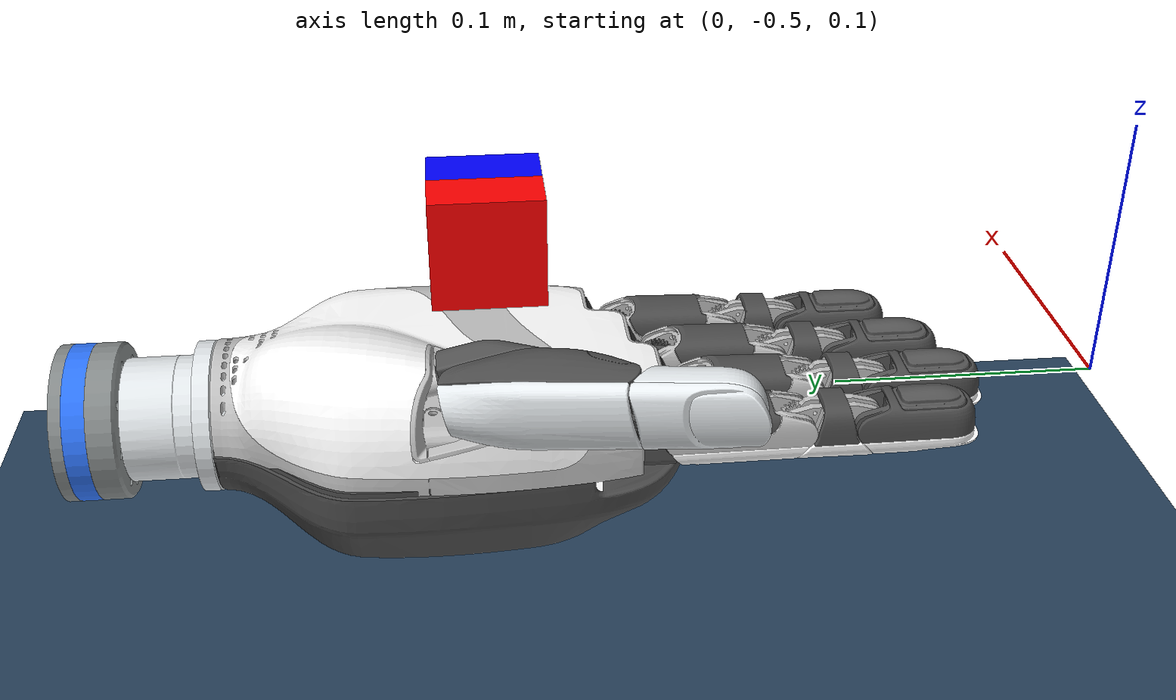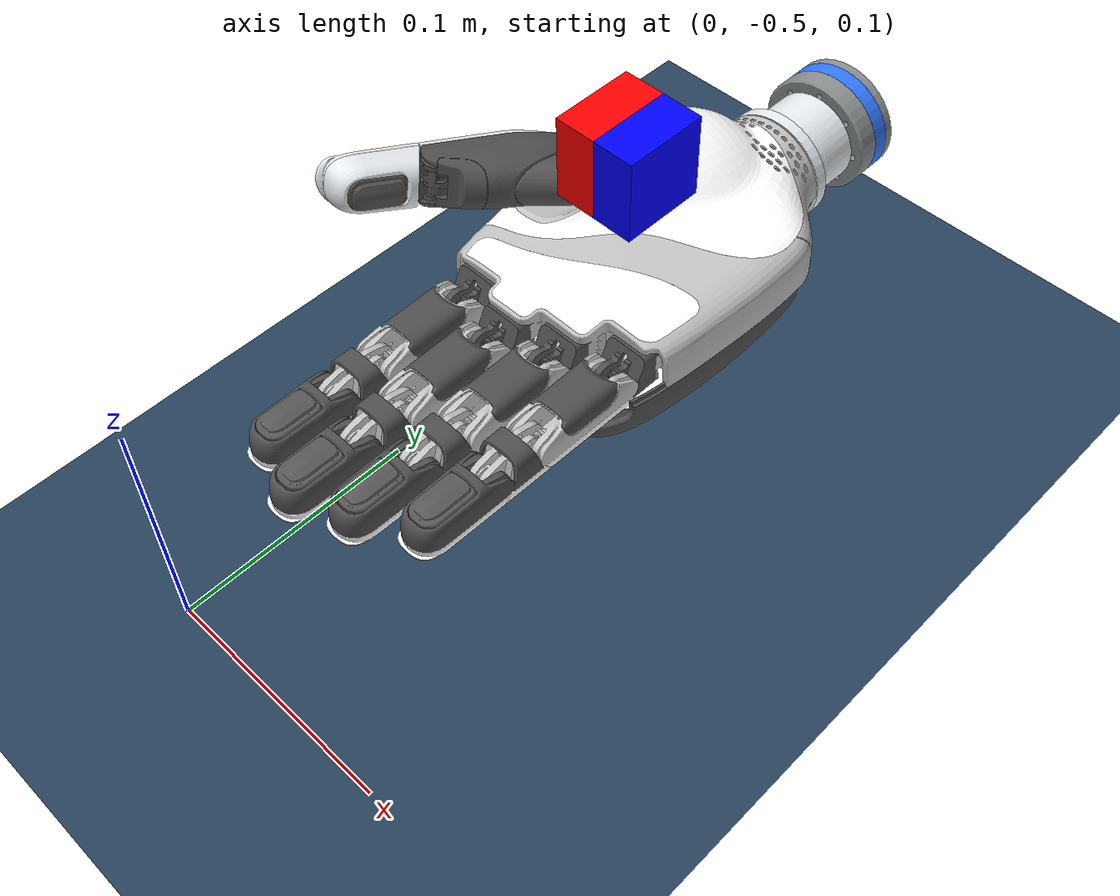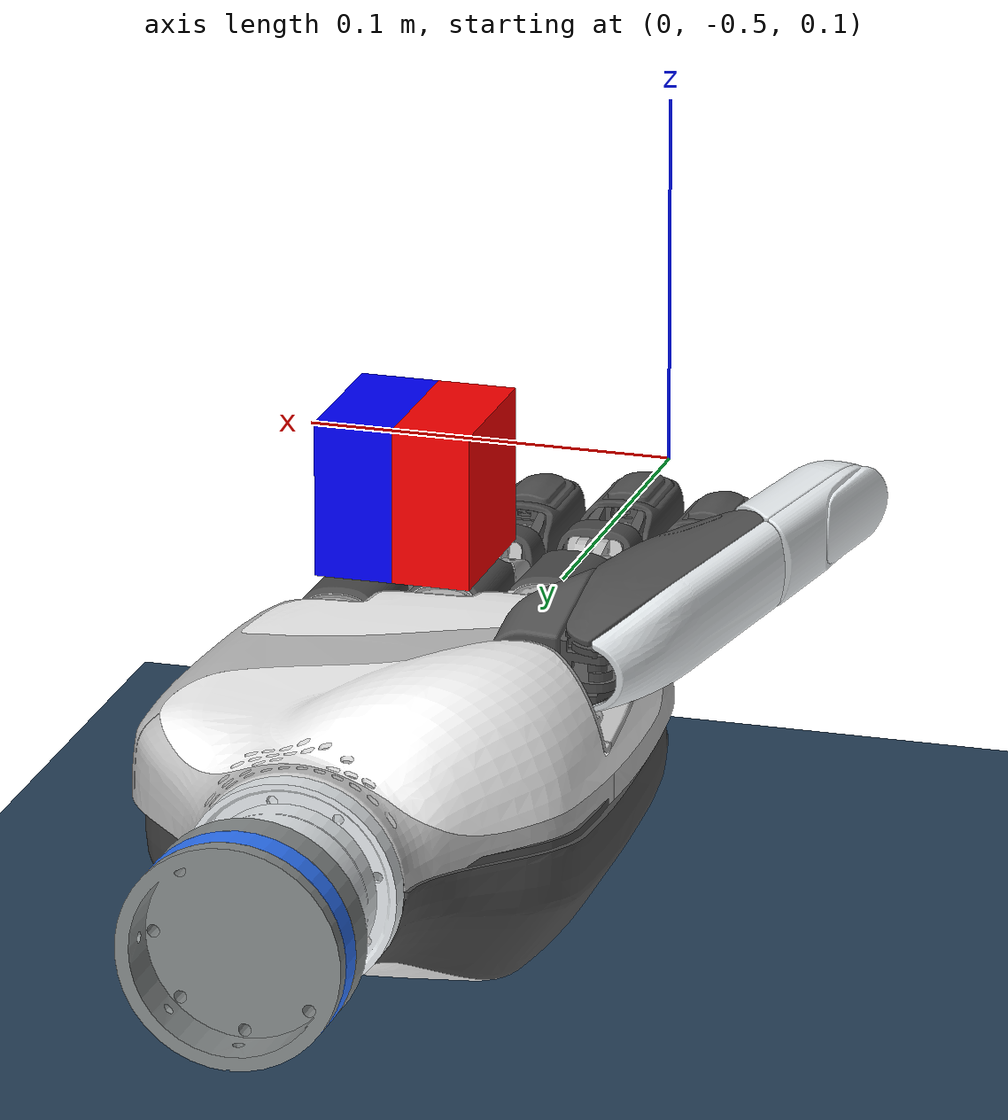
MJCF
<mujoco model="right_hand">
  <compiler angle="radian" meshdir="meshes"/>
  <option gravity='0 0 -9.81' iterations='100' solver='Newton' timestep='0.001'/>

  <default>
      <joint damping="0.1"/>
  </default>

  <visual>
    <headlight diffuse="0.6 0.6 0.6" ambient="0.3 0.3 0.3" specular="0 0 0"/>
    <rgba com="0.502 1.0 0 0.5" contactforce="0.98 0.4 0.4 0.7" contactpoint="1.0 1.0 0.6 0.4"/>
    <scale com="0.2" forcewidth="0.035" contactwidth="0.10" contactheight="0.04"/>
  </visual>

  <asset>
    <texture name="plane" type="2d" builtin="flat" rgb1="1 1 1" rgb2="1 1 1" width="512" height="512" mark="cross" markrgb="0 0 0"/>
    <material name="plane" reflectance="0.0" texture="plane" texrepeat="3 3" texuniform="true"/>
    <texture name="grid" type="2d" builtin="checker" width="512" height="512" rgb1=".1 .2 .3" rgb2=".2 .3 .4"/>
    <material name="grid" texture="grid" texrepeat="2 2" texuniform="false" reflectance=".2"/>

    <mesh name="r_a_link7" file="r_a_link7.STL"/>
    <mesh name="r_a_link7_1" file="r_a_link7_1.STL"/>
    <mesh name="r_a_link7_2" file="r_a_link7_2.STL"/>
    <mesh name="r_a_link7_3" file="r_a_link7_3.STL"/>
    <mesh name="r_a_link7_4" file="r_a_link7_4.STL"/>
    <mesh name="r_f_link1_1" file="r_f_link1_1.STL"/>
    <mesh name="r_f_link1_2" file="r_f_link1_2.STL"/>
    <mesh name="r_f_link1_2_1" file="r_f_link1_2_1.STL"/>
    <mesh name="r_f_link1_3" file="r_f_link1_3.STL"/>
    <mesh name="r_f_link1_3_1" file="r_f_link1_3_1.STL"/>
    <mesh name="r_f_link1_3_2" file="r_f_link1_3_2.STL"/>
    <mesh name="r_f_link2_1" file="r_f_link2_1.STL"/>
    <mesh name="r_f_link2_2" file="r_f_link2_2.STL"/>
    <mesh name="r_f_link2_2_1" file="r_f_link2_2_1.STL"/>
    <mesh name="r_f_link2_2_2" file="r_f_link2_2_2.STL"/>
    <mesh name="r_f_link2_3" file="r_f_link2_3.STL"/>
    <mesh name="r_f_link2_3_1" file="r_f_link2_3_1.STL"/>
    <mesh name="r_f_link2_3_2" file="r_f_link2_3_2.STL"/>
    <mesh name="r_f_link2_4" file="r_f_link2_4.STL"/>
    <mesh name="r_f_link2_4_1" file="r_f_link2_4_1.STL"/>
    <mesh name="r_f_link2_4_2" file="r_f_link2_4_2.STL"/>
    <mesh name="r_f_link3_1" file="r_f_link3_1.STL"/>
    <mesh name="r_f_link3_2" file="r_f_link3_2.STL"/>
    <mesh name="r_f_link3_2_1" file="r_f_link3_2_1.STL"/>
    <mesh name="r_f_link3_2_2" file="r_f_link3_2_2.STL"/>
    <mesh name="r_f_link3_3" file="r_f_link3_3.STL"/>
    <mesh name="r_f_link3_3_1" file="r_f_link3_3_1.STL"/>
    <mesh name="r_f_link3_3_2" file="r_f_link3_3_2.STL"/>
    <mesh name="r_f_link3_4" file="r_f_link3_4.STL"/>
    <mesh name="r_f_link3_4_1" file="r_f_link3_4_1.STL"/>
    <mesh name="r_f_link3_4_2" file="r_f_link3_4_2.STL"/>
    <mesh name="r_f_link4_1" file="r_f_link4_1.STL"/>
    <mesh name="r_f_link4_2" file="r_f_link4_2.STL"/>
    <mesh name="r_f_link4_2_1" file="r_f_link4_2_1.STL"/>
    <mesh name="r_f_link4_2_2" file="r_f_link4_2_2.STL"/>
    <mesh name="r_f_link4_3" file="r_f_link4_3.STL"/>
    <mesh name="r_f_link4_3_1" file="r_f_link4_3_1.STL"/>
    <mesh name="r_f_link4_3_2" file="r_f_link4_3_2.STL"/>
    <mesh name="r_f_link4_4" file="r_f_link4_4.STL"/>
    <mesh name="r_f_link4_4_1" file="r_f_link4_4_1.STL"/>
    <mesh name="r_f_link4_4_2" file="r_f_link4_4_2.STL"/>
    <mesh name="r_f_link5_1" file="r_f_link5_1.STL"/>
    <mesh name="r_f_link5_2" file="r_f_link5_2.STL"/>
    <mesh name="r_f_link5_2_1" file="r_f_link5_2_1.STL"/>
    <mesh name="r_f_link5_2_2" file="r_f_link5_2_2.STL"/>
    <mesh name="r_f_link5_3" file="r_f_link5_3.STL"/>
    <mesh name="r_f_link5_3_1" file="r_f_link5_3_1.STL"/>
    <mesh name="r_f_link5_3_2" file="r_f_link5_3_2.STL"/>
    <mesh name="r_f_link5_4" file="r_f_link5_4.STL"/>
    <mesh name="r_f_link5_4_1" file="r_f_link5_4_1.STL"/>
    <mesh name="r_f_link5_4_2" file="r_f_link5_4_2.STL"/>
    <mesh name="r_a_link7_5" file="r_a_link7_5.STL"/>
    <mesh name="r_a_link7_6" file="r_a_link7_6.STL"/>
    <mesh name="r_a_link7_7" file="r_a_link7_7.STL"/>
    <mesh name="r_a_link7_8" file="r_a_link7_8.STL"/>
  </asset>
  <include file="cube_simple.xml"/>
  <worldbody>
  <light pos="0 0 1.5" dir="0 0 -1" directional="true"/>
  <geom name="floor" type="plane" size="0 0 1" material="grid"/>

  <body name="trunk" pos="0 0 0.1" quat="0.7071068 0.70710680 0 0">
    <geom name="r_a_link7" type="mesh" rgba="0.75294 0.75294 0.75294 1" mesh="r_a_link7"/>
    <geom name="r_a_link7_1" type="mesh" rgba="1 1 1 1" mesh="r_a_link7_1"/>
    <geom name="r_a_link7_2" type="mesh" rgba="1 1 1 1" mesh="r_a_link7_2"/>
    <geom name="r_a_link7_3" type="mesh" rgba="0.29804 0.29804 0.29804 1" mesh="r_a_link7_3"/>
    <geom name="r_a_link7_4" type="mesh" rgba="1 1 1 1" mesh="r_a_link7_4"/>
    <geom name="r_a_link7_5" type="mesh" rgba="0.89804 0.91765 0.92941 1" mesh="r_a_link7_5"/>
    <geom name="r_a_link7_6" type="mesh" rgba="0.52941 0.54902 0.54902 1" mesh="r_a_link7_6"/>
    <geom name="r_a_link7_7" type="mesh" rgba="0.184314 0.466667 1 1" mesh="r_a_link7_7"/>
    <geom name="r_a_link7_8" type="mesh" rgba="0.898039 0.917647 0.929412 1" mesh="r_a_link7_8"/>
    <body name="r_f_link1_1" pos="-0.033934 0.030194 0.25136" quat="0.679638 -0.0774893 0.0825276 0.72476">
      <inertial pos="-0.00011281 0.0015271 0.013552" quat="0.722092 -0.121341 0.110234 0.672092" mass="0.018431" diaginertia="1.98054e-06 1.90873e-06 1.26623e-06"/>
      <joint name="r_f_joint1_1" pos="0 0 0" axis="0 0 1"/>
      <geom type="mesh" rgba="0.33333 0.33333 0.33333 1" mesh="r_f_link1_1"/>
      <body name="r_f_link1_2" pos="0 0.01598 0.0093" quat="0.499959 0.500039 -0.499963 -0.500039">
        <inertial pos="-0.0101659 0.0290341 9.4964e-05" quat="0.433108 0.585162 -0.394494 0.560694" mass="0.033912" diaginertia="9.93789e-06 9.61348e-06 5.27707e-06"/>
        <joint name="r_f_joint1_2" pos="0 0 0" axis="0 0 -1"/>
        <geom type="mesh" rgba="0.3098 0.3098 0.3098 1" mesh="r_f_link1_2"/>
        <geom type="mesh" rgba="0.89804 0.91765 0.92941 1" mesh="r_f_link1_2_1"/>
        <body name="r_f_link1_3" pos="-0.020827 0.050904 0">
          <inertial pos="-0.0113514 0.0217925 9.06839e-05" quat="0.687504 0.68338 0.174112 0.173247" mass="0.035963" diaginertia="6.23707e-06 5.71493e-06 2.21335e-06"/>
          <joint name="r_f_joint1_3" pos="0 0 0" axis="0 0 1"/>
          <geom type="mesh" rgba="0.3098 0.3098 0.3098 1" mesh="r_f_link1_3"/>
          <geom type="mesh" rgba="0.89804 0.91765 0.92941 1" mesh="r_f_link1_3_1"/>
          <geom type="mesh" rgba="0.89804 0.91765 0.92941 1" mesh="r_f_link1_3_2"/>
        </body>
      </body>
    </body>
    <body name="r_f_link2_1" pos="-0.034918 0.006942 0.31685" quat="0.499823 -0.500175 -0.499825 -0.500177">
      <inertial pos="0.0076685 -1.9581e-05 -0.0016592" quat="0.342444 0.630189 0.600316 0.353856" mass="0.010578" diaginertia="1.0215e-06 9.78793e-07 7.18278e-07"/>
      <joint name="r_f_joint2_1" pos="0 0 0" axis="0 0 1"/>
      <geom type="mesh" rgba="0.3098 0.3098 0.3098 1" mesh="r_f_link2_1"/>
      <body name="r_f_link2_2" pos="0.017 0 0" quat="0.707105 0.707108 0 0">
        <inertial pos="0.0212697 0.000212337 0.000212982" quat="0.506932 0.508346 0.491156 0.493326" mass="0.0230681" diaginertia="4.9854e-06 4.55617e-06 1.68229e-06"/>
        <joint name="r_f_joint2_2" pos="0 0 0" axis="0 0 -1"/>
        <geom type="mesh" rgba="0.75294 0.75294 0.75294 1" mesh="r_f_link2_2"/>
        <geom type="mesh" rgba="0.29804 0.29804 0.29804 1" mesh="r_f_link2_2_1"/>
        <geom type="mesh" rgba="1 1 1 1" mesh="r_f_link2_2_2"/>
        <body name="r_f_link2_3" pos="0.043 0 0">
          <inertial pos="0.012599 -0.00126744 1.56473e-05" quat="0.00361408 0.708871 -0.011134 0.705241" mass="0.0115559" diaginertia="1.06055e-06 9.83796e-07 5.45249e-07"/>
          <joint name="r_f_joint2_3" pos="0 0 0" axis="0 0 -1"/>
          <geom type="mesh" rgba="0.75294 0.75294 0.75294 1" mesh="r_f_link2_3"/>
          <geom type="mesh" rgba="0.29804 0.29804 0.29804 1" mesh="r_f_link2_3_1"/>
          <geom type="mesh" rgba="1 1 1 1" mesh="r_f_link2_3_2"/>
          <body name="r_f_link2_4" pos="0.025 0 0">
            <inertial pos="0.0181298 -0.000161505 9.06067e-07" quat="0.509485 0.509526 0.490243 0.490378" mass="0.0193678" diaginertia="2.50997e-06 2.25825e-06 7.9547e-07"/>
            <joint name="r_f_joint2_4" pos="0 0 0" axis="0 0 -1"/>
            <geom type="mesh" rgba="0.33333 0.33333 0.33333 1" mesh="r_f_link2_4"/>
            <geom type="mesh" rgba="0.29804 0.29804 0.29804 1" mesh="r_f_link2_4_1"/>
            <geom type="mesh" rgba="1 1 1 1" mesh="r_f_link2_4_2"/>
          </body>
        </body>
      </body>
    </body>
    <body name="r_f_link3_1" pos="-0.010618 0.0069587 0.32585" quat="0.499823 -0.500175 -0.499825 -0.500177">
      <inertial pos="0.0076685 -1.9581e-05 -0.0016592" quat="0.342444 0.630189 0.600316 0.353856" mass="0.010578" diaginertia="1.0215e-06 9.78793e-07 7.18278e-07"/>
      <joint name="r_f_joint3_1" pos="0 0 0" axis="0 0 -1"/>
      <geom type="mesh" rgba="0.3098 0.3098 0.3098 1" mesh="r_f_link3_1"/>
      <body name="r_f_link3_2" pos="0.017 0 0" quat="0.707105 0.707108 0 0">
        <inertial pos="0.0212697 0.00021993 0.000212982" quat="0.506925 0.508391 0.491109 0.493334" mass="0.0230681" diaginertia="4.98542e-06 4.55861e-06 1.68472e-06"/>
        <joint name="r_f_joint3_2" pos="0 0 0" axis="0 0 -1"/>
        <geom type="mesh" rgba="0.75294 0.75294 0.75294 1" mesh="r_f_link3_2"/>
        <geom type="mesh" rgba="0.29804 0.29804 0.29804 1" mesh="r_f_link3_2_1"/>
        <geom type="mesh" rgba="1 1 1 1" mesh="r_f_link3_2_2"/>
        <body name="r_f_link3_3" pos="0.043 0 0">
          <inertial pos="0.0125587 -0.00126744 1.56528e-05" quat="0.00241003 0.708882 -0.00999291 0.705252" mass="0.0115559" diaginertia="1.06055e-06 9.83738e-07 5.45304e-07"/>
          <joint name="r_f_joint3_3" pos="0 0 0" axis="0 0 -1"/>
          <geom type="mesh" rgba="0.75294 0.75294 0.75294 1" mesh="r_f_link3_3"/>
          <geom type="mesh" rgba="0.29804 0.29804 0.29804 1" mesh="r_f_link3_3_1"/>
          <geom type="mesh" rgba="1 1 1 1" mesh="r_f_link3_3_2"/>
          <body name="r_f_link3_4" pos="0.025 0 0">
            <inertial pos="0.0181726 -0.000161514 1.06325e-06" quat="0.50982 0.509883 0.489872 0.490029" mass="0.0193678" diaginertia="2.51231e-06 2.26042e-06 7.9528e-07"/>
            <joint name="r_f_joint3_4" pos="0 0 0" axis="0 0 -1"/>
            <geom type="mesh" rgba="0.33333 0.33333 0.33333 1" mesh="r_f_link3_4"/>
            <geom type="mesh" rgba="0.29804 0.29804 0.29804 1" mesh="r_f_link3_4_1"/>
            <geom type="mesh" rgba="1 1 1 1" mesh="r_f_link3_4_2"/>
          </body>
        </body>
      </body>
    </body>
    <body name="r_f_link4_1" pos="0.013682 0.0069755 0.31685" quat="0.499823 -0.500175 -0.499825 -0.500177">
      <inertial pos="0.0076685 -1.9581e-05 -0.0016592" quat="0.342444 0.630189 0.600316 0.353856" mass="0.010578" diaginertia="1.0215e-06 9.78793e-07 7.18278e-07"/>
      <joint name="r_f_joint4_1" pos="0 0 0" axis="0 0 -1"/>
      <geom type="mesh" rgba="0.3098 0.3098 0.3098 1" mesh="r_f_link4_1"/>
      <body name="r_f_link4_2" pos="0.017 0 0" quat="0.707105 0.707108 0 0">
        <inertial pos="0.0212952 0.000212333 0.000210607" quat="0.507599 0.508471 0.491055 0.492611" mass="0.0230681" diaginertia="4.98637e-06 4.55679e-06 1.68197e-06"/>
        <joint name="r_f_joint4_2" pos="0 0 0" axis="0 0 -1"/>
        <geom type="mesh" rgba="0.75294 0.75294 0.75294 1" mesh="r_f_link4_2"/>
        <geom type="mesh" rgba="0.29804 0.29804 0.29804 1" mesh="r_f_link4_2_1"/>
        <geom type="mesh" rgba="1 1 1 1" mesh="r_f_link4_2_2"/>
        <body name="r_f_link4_3" pos="0.043 0 0">
          <inertial pos="0.0125851 -0.00126744 1.56391e-05" quat="0.00456934 0.708856 -0.0120367 0.705236" mass="0.0115559" diaginertia="1.06058e-06 9.83881e-07 5.45198e-07"/>
          <joint name="r_f_joint4_3" pos="0 0 0" axis="0 0 -1"/>
          <geom type="mesh" rgba="0.75294 0.75294 0.75294 1" mesh="r_f_link4_3"/>
          <geom type="mesh" rgba="0.29804 0.29804 0.29804 1" mesh="r_f_link4_3_1"/>
          <geom type="mesh" rgba="1 1 1 1" mesh="r_f_link4_3_2"/>
          <body name="r_f_link4_4" pos="0.025 0 0">
            <inertial pos="0.0181769 -0.000161514 9.95847e-07" quat="0.509668 0.509711 0.490051 0.490187" mass="0.0193678" diaginertia="2.51278e-06 2.26097e-06 7.95369e-07"/>
            <joint name="r_f_joint4_4" pos="0 0 0" axis="0 0 -1"/>
            <geom type="mesh" rgba="0.33333 0.33333 0.33333 1" mesh="r_f_link4_4"/>
            <geom type="mesh" rgba="0.29804 0.29804 0.29804 1" mesh="r_f_link4_4_1"/>
            <geom type="mesh" rgba="1 1 1 1" mesh="r_f_link4_4_2"/>
          </body>
        </body>
      </body>
    </body>
    <body name="r_f_link5_1" pos="0.037982 0.0069922 0.30285" quat="0.499823 -0.500175 -0.499825 -0.500177">
      <inertial pos="0.0076685 -1.9581e-05 -0.0016592" quat="0.342444 0.630189 0.600316 0.353856" mass="0.010578" diaginertia="1.0215e-06 9.78793e-07 7.18278e-07"/>
      <joint name="r_f_joint5_1" pos="0 0 0" axis="0 0 -1"/>
      <geom type="mesh" rgba="0.3098 0.3098 0.3098 1" mesh="r_f_link5_1"/>
      <body name="r_f_link5_2" pos="0.017 0 0" quat="0.707105 0.707108 0 0">
        <inertial pos="0.0212954 0.000219952 0.000212977" quat="0.507312 0.508794 0.49071 0.492916" mass="0.0230683" diaginertia="4.98631e-06 4.55923e-06 1.6844e-06"/>
        <joint name="r_f_joint5_2" pos="0 0 0" axis="0 0 -1"/>
        <geom type="mesh" rgba="0.752941 0.752941 0.752941 1" mesh="r_f_link5_2"/>
        <geom type="mesh" rgba="0.298039 0.298039 0.298039 1" mesh="r_f_link5_2_1"/>
        <geom type="mesh" rgba="1 1 1 1" mesh="r_f_link5_2_2"/>
        <body name="r_f_link5_3" pos="0.043 0 0">
          <inertial pos="0.0125523 -0.00126743 1.56526e-05" quat="0.00191308 0.708887 -0.00952629 0.705255" mass="0.0115559" diaginertia="1.06055e-06 9.83734e-07 5.45321e-07"/>
          <joint name="r_f_joint5_3" pos="0 0 0" axis="0 0 -1"/>
          <geom type="mesh" rgba="0.752941 0.752941 0.752941 1" mesh="r_f_link5_3"/>
          <geom type="mesh" rgba="0.298039 0.298039 0.298039 1" mesh="r_f_link5_3_1"/>
          <geom type="mesh" rgba="1 1 1 1" mesh="r_f_link5_3_2"/>
          <body name="r_f_link5_4" pos="0.025 0 0">
            <inertial pos="0.0181106 -0.000161544 9.95666e-07" quat="0.509123 0.509165 0.490617 0.490754" mass="0.0193676" diaginertia="2.50918e-06 2.25775e-06 7.95666e-07"/>
            <joint name="r_f_joint5_4" pos="0 0 0" axis="0 0 -1"/>
            <geom type="mesh" rgba="0.333333 0.333333 0.333333 1" mesh="r_f_link5_4"/>
            <geom type="mesh" rgba="0.298039 0.298039 0.298039 1" mesh="r_f_link5_4_1"/>
            <geom type="mesh" rgba="1 1 1 1" mesh="r_f_link5_4_2"/>
          </body>
        </body>
      </body>
    </body>
  </body>
  </worldbody>

  <contact>
        <exclude body1="trunk" body2="r_f_link1_1"/>
        <exclude body1="trunk" body2="r_f_link1_2"/>
        <exclude body1="trunk" body2="r_f_link1_3"/>

        <exclude body1="trunk" body2="r_f_link2_1"/>
        <exclude body1="trunk" body2="r_f_link2_2"/>
        <exclude body1="trunk" body2="r_f_link2_3"/>
        <exclude body1="trunk" body2="r_f_link2_4"/>

        <exclude body1="trunk" body2="r_f_link3_1"/>
        <exclude body1="trunk" body2="r_f_link3_2"/>
        <exclude body1="trunk" body2="r_f_link3_3"/>
        <exclude body1="trunk" body2="r_f_link3_4"/>

        <exclude body1="trunk" body2="r_f_link4_1"/>
        <exclude body1="trunk" body2="r_f_link4_2"/>
        <exclude body1="trunk" body2="r_f_link4_3"/>
        <exclude body1="trunk" body2="r_f_link4_4"/>

        <exclude body1="trunk" body2="r_f_link5_1"/>
        <exclude body1="trunk" body2="r_f_link5_2"/>
        <exclude body1="trunk" body2="r_f_link5_3"/>
        <exclude body1="trunk" body2="r_f_link5_4"/>
  </contact>
  <actuator>
    <!-- torque control-->
     <!--position control-->
     <position name="position_r_f_joint1_1"    joint="r_f_joint1_1" kp="2" kv=".01" ctrlrange="-2 2"/>
     <position name="position_r_f_joint1_2"    joint="r_f_joint1_2" kp="2" kv=".01" ctrlrange="-2 2"/>
     <position name="position_r_f_joint1_3"    joint="r_f_joint1_3" kp="2" kv=".01" ctrlrange="-2 2"/>
     <position name="position_r_f_joint2_1"    joint="r_f_joint2_1" kp="2." kv=".0" ctrlrange="-2 2"/>
     <position name="position_r_f_joint2_2"    joint="r_f_joint2_2" kp="2" kv=".01" ctrlrange="-2 2"/>
     <position name="position_r_f_joint2_3"    joint="r_f_joint2_3" kp="2" kv=".01" ctrlrange="-2 2"/>
     <position name="position_r_f_joint2_4"    joint="r_f_joint2_4" kp="2" kv=".01" ctrlrange="-2 2"/>
     <position name="position_r_f_joint3_1"    joint="r_f_joint3_1" kp="2." kv=".0" ctrlrange="-2 2"/>
     <position name="position_r_f_joint3_2"    joint="r_f_joint3_2" kp="2" kv=".01" ctrlrange="-2 2"/>
     <position name="position_r_f_joint3_3"    joint="r_f_joint3_3" kp="2" kv=".01" ctrlrange="-2 2"/>
     <position name="position_r_f_joint3_4"    joint="r_f_joint3_4" kp="2" kv=".01" ctrlrange="-2 2"/>
     <position name="position_r_f_joint4_1"    joint="r_f_joint4_1" kp="2." kv=".0" ctrlrange="-2 2"/>
     <position name="position_r_f_joint4_2"    joint="r_f_joint4_2" kp="2" kv=".01" ctrlrange="-2 2"/>
     <position name="position_r_f_joint4_3"    joint="r_f_joint4_3" kp="2" kv=".01" ctrlrange="-2 2"/>
     <position name="position_r_f_joint4_4"    joint="r_f_joint4_4" kp="2" kv=".01" ctrlrange="-2 2"/>
     <position name="position_r_f_joint5_1"    joint="r_f_joint5_1" kp="2." kv=".0" ctrlrange="-2 2"/>
     <position name="position_r_f_joint5_2"    joint="r_f_joint5_2" kp="2" kv=".01" ctrlrange="-2 2"/>
     <position name="position_r_f_joint5_3"    joint="r_f_joint5_3" kp="2" kv=".01" ctrlrange="-2 2"/>
     <position name="position_r_f_joint5_4"    joint="r_f_joint5_4" kp="2" kv=".01" ctrlrange="-2 2"/>
  </actuator>
</mujoco>

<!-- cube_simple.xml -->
<mujoco>
    <worldbody>
        <!-- 第一个方块 -->
        <body name="box1" pos="-0.01 -0.27 0.17">
            <geom type="box" size="0.01 0.02 0.02" rgba="1 0 0 1"/>
            <inertial pos="0 0 0" mass="0.05" diaginertia="0.0003125 0.0003125 0.0003125"/>
            <!-- 第二个方块 -->
            <body name="box2" pos="0.02 0.0 0">
                <joint name="rotate_joint" type="hinge" axis="1 0 0" pos="0.01 0 0" damping="0.0"/>
                <geom type="box" size="0.01 0.02 0.02" rgba="0 0 1 1"/>
                <inertial pos="0 0 0" mass="0.05" diaginertia="0.0003125 0.0003125 0.0003125"/>
            </body>
        </body>
    </worldbody>

    <contact>
        <exclude body1="box1" body2="box2"/>
    </contact>

</mujoco>
